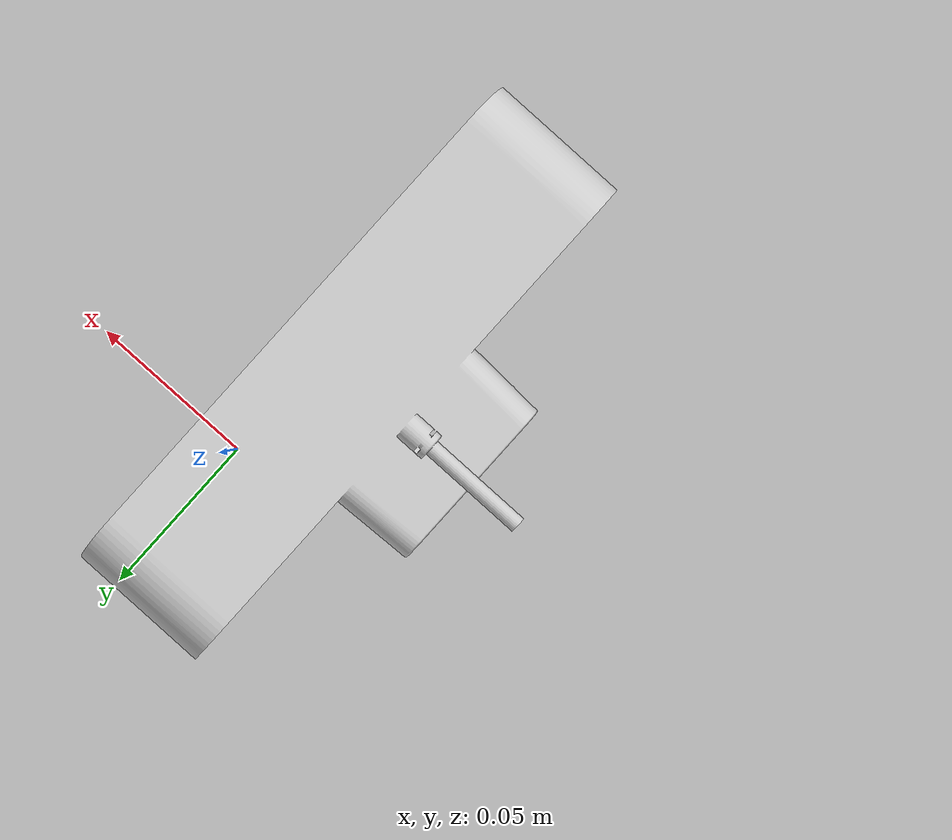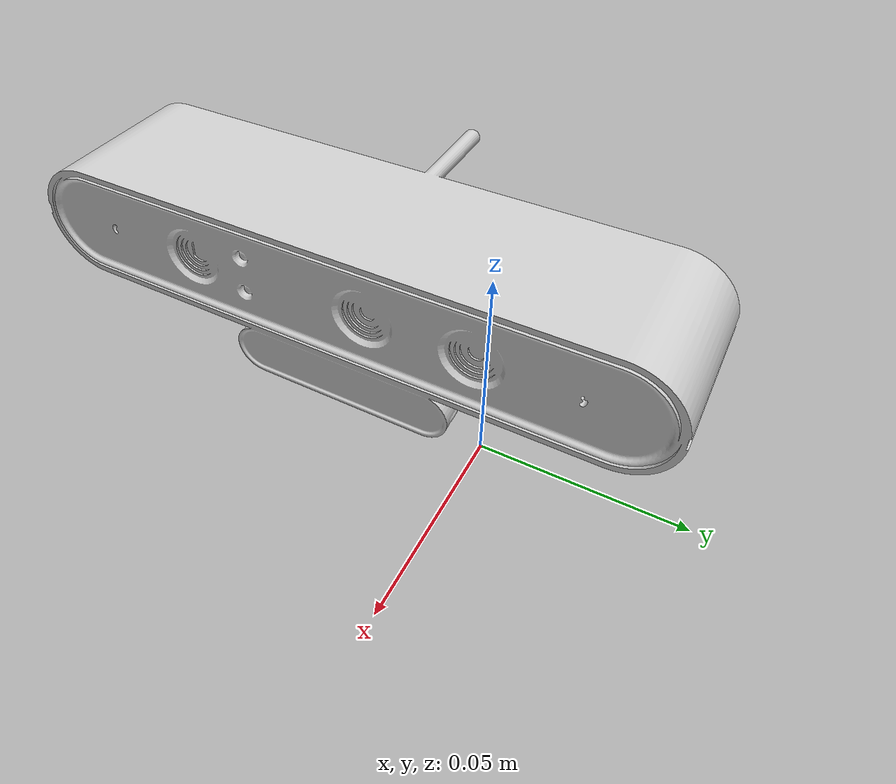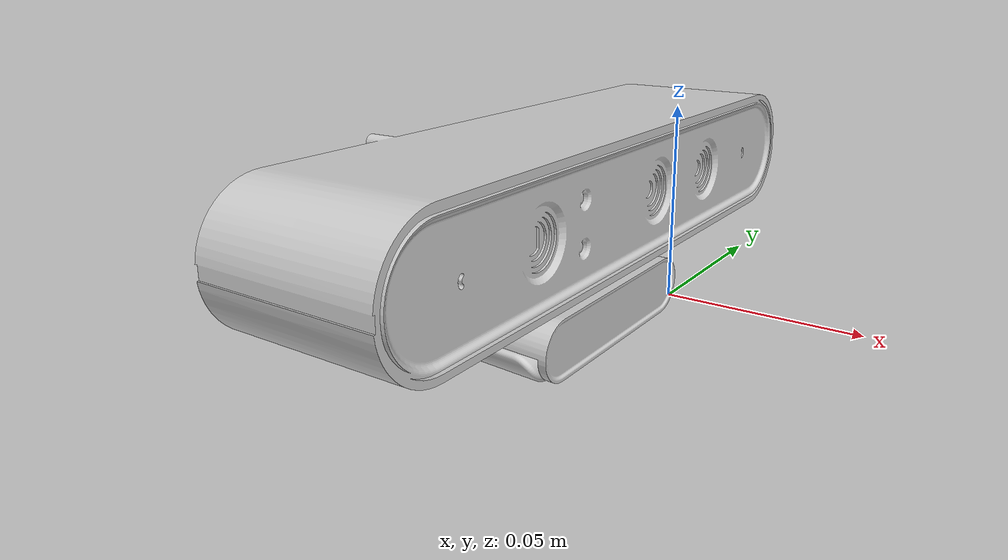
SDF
<?xml version="1.0" ?>
<sdf version="1.5">
	<model name="orbbec_astra_sensor">
		<static>1</static>
		<pose>0 0 0.035 0 0 0</pose>
		<link name="link">
			<inertial>
				<mass>0.1</mass>
			</inertial>
			<collision name="collision">
				<pose>-0.03 0.037 -0.01 0 0 0</pose>
				<geometry>
					<box>
						<size>0.079 0.1648 0.05</size>
					</box>
				</geometry>
			</collision>
			<visual name="visual">
				<transparency>0</transparency>
				<geometry>
					<mesh>
						<uri>model://orbbec_astra_sensor/meshes/orbbec_astra_sensor.stl</uri>
					</mesh>
				</geometry>
				<material>
					<script>
						<name>SensorPlacementOptimization/LightGray</name>
						<uri>file://materials/sensor_placement_optimization.material</uri>
					</script>
				</material>
			</visual>
			<sensor name="sensor" type="depth">
				<update_rate>30</update_rate>
				<camera>
					<horizontal_fov>1.0472</horizontal_fov>
					<image>
						<width>640</width>
						<height>480</height>
						<format>B8G8R8</format>
					</image>
					<clip>
						<near>0.6</near>
						<far>8.0</far>
					</clip>
				</camera>
			</sensor>
		</link>
	</model>
</sdf>
